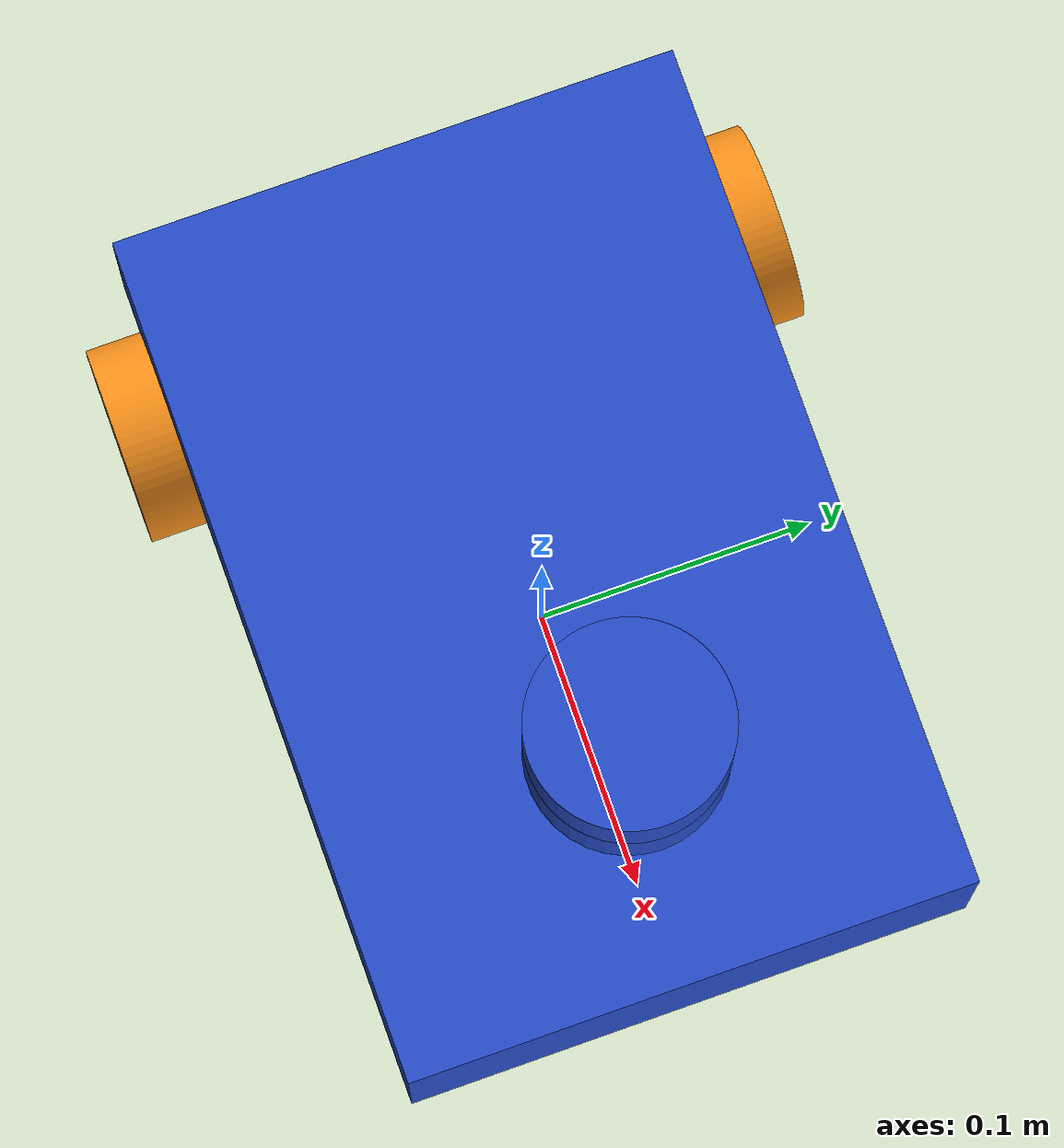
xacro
<?xml version="1.0" ?>
<robot name="diff_robot" xmlns:xacro="http://www.ros.org/wiki/xacro">

<!-- materials file -->
<xacro:include filename="$(find robot_description)/urdf/materials.xacro" />
<!-- gazebo materials file -->
<xacro:include filename="$(find robot_description)/gazebo/robot_gazebo_material.gazebo" />
<!-- transfer -->
<!-- plugin -->
<xacro:include filename="$(find robot_description)/gazebo/robot_gazebo_plugin.gazebo" />
<xacro:include filename="$(find robot_description)/gazebo/robot.gazebo" />

<link name="base_link">
  <inertial>
    <origin xyz="0.0016414935415674532 0.00013181938023246637 0.0817851117660408" rpy="0 0 0"/>
    <mass value="4.641985935784635"/>
    <inertia ixx="0.017373" iyy="0.036748" izz="0.049678" ixy="-4.2e-05" iyz="-3e-05" ixz="-0.000462"/>
  </inertial>
  <visual>
    <origin xyz="0 0 0" rpy="0 0 0"/>
    <geometry>
      <mesh filename="package://robot_description/meshes/base_link.stl" scale="0.001 0.001 0.001"/>
    </geometry>
    <material name="blue"/>
  </visual>
  <collision>
    <origin xyz="0 0 0" rpy="0 0 0"/>
    <geometry>
      <mesh filename="package://robot_description/meshes/base_link.stl" scale="0.001 0.001 0.001"/>
    </geometry>
  </collision>
</link>

<link name="lidar_1">
  <inertial>
    <origin xyz="0.0 -4.336808689942018e-18 0.015000000000000013" rpy="0 0 0"/>
    <mass value="0.6950302507169375"/>
    <inertia ixx="0.000265" iyy="0.000265" izz="0.000426" ixy="-0.0" iyz="-0.0" ixz="-0.0"/>
  </inertial>
  <visual>
    <origin xyz="-0.07 -0.005 -0.146" rpy="0 0 0"/>
    <geometry>
      <mesh filename="package://robot_description/meshes/lidar_1.stl" scale="0.001 0.001 0.001"/>
    </geometry>
    <material name="blue"/>
  </visual>
  <collision>
    <origin xyz="-0.07 -0.005 -0.146" rpy="0 0 0"/>
    <geometry>
      <mesh filename="package://robot_description/meshes/lidar_1.stl" scale="0.001 0.001 0.001"/>
    </geometry>
  </collision>
</link>

<link name="caster_wheel_1">
  <inertial>
    <origin xyz="1.3877787807814457e-17 1.5790972091241895e-18 -0.02301136363636362" rpy="0 0 0"/>
    <mass value="0.02384828798232877"/>
    <inertia ixx="5e-06" iyy="5e-06" izz="2e-06" ixy="-0.0" iyz="0.0" ixz="-0.0"/>
  </inertial>
  <visual>
    <origin xyz="-0.11 -0.0 -0.05" rpy="0 0 0"/>
    <geometry>
      <mesh filename="package://robot_description/meshes/caster_wheel_1.stl" scale="0.001 0.001 0.001"/>
    </geometry>
    <material name="silver"/>
  </visual>
  <collision>
    <origin xyz="-0.11 -0.0 -0.05" rpy="0 0 0"/>
    <geometry>
      <mesh filename="package://robot_description/meshes/caster_wheel_1.stl" scale="0.001 0.001 0.001"/>
    </geometry>
  </collision>
</link>

<link name="left_wheel_1">
  <inertial>
    <origin xyz="8.923417560424696e-15 0.014858133669609086 2.0816681711721685e-17" rpy="0 0 0"/>
    <mass value="0.07240291144049812"/>
    <inertia ixx="2.4e-05" iyy="4.4e-05" izz="2.4e-05" ixy="0.0" iyz="0.0" ixz="0.0"/>
  </inertial>
  <visual>
    <origin xyz="0.1 -0.095 -0.035" rpy="0 0 0"/>
    <geometry>
      <mesh filename="package://robot_description/meshes/left_wheel_1.stl" scale="0.001 0.001 0.001"/>
    </geometry>
    <material name="orange"/>
  </visual>
  <collision>
    <origin xyz="0.1 -0.095 -0.035" rpy="0 0 0"/>
    <geometry>
      <mesh filename="package://robot_description/meshes/left_wheel_1.stl" scale="0.001 0.001 0.001"/>
    </geometry>
  </collision>
</link>

<link name="right_wheel_1">
  <inertial>
    <origin xyz="3.562428130265971e-14 -0.014858133669609086 -6.938893903907228e-18" rpy="0 0 0"/>
    <mass value="0.07240291144049789"/>
    <inertia ixx="2.4e-05" iyy="4.4e-05" izz="2.4e-05" ixy="0.0" iyz="-0.0" ixz="0.0"/>
  </inertial>
  <visual>
    <origin xyz="0.1 0.095 -0.035" rpy="0 0 0"/>
    <geometry>
      <mesh filename="package://robot_description/meshes/right_wheel_1.stl" scale="0.001 0.001 0.001"/>
    </geometry>
    <material name="orange"/>
  </visual>
  <collision>
    <origin xyz="0.1 0.095 -0.035" rpy="0 0 0"/>
    <geometry>
      <mesh filename="package://robot_description/meshes/right_wheel_1.stl" scale="0.001 0.001 0.001"/>
    </geometry>
  </collision>
</link>

<!-- joint -->
<joint name="to_lidar" type="fixed">
  <origin xyz="0.07 0.005 0.146" rpy="0 0 0"/>
  <parent link="base_link"/>
  <child link="lidar_1"/>
</joint>

<joint name="to_caster_wheel" type="fixed">
  <origin xyz="0.11 0.0 0.05" rpy="0 0 0"/>
  <parent link="base_link"/>
  <child link="caster_wheel_1"/>
</joint>

<joint name="to_left_wheel" type="continuous">
  <origin xyz="-0.1 0.095 0.035" rpy="0 0 0"/>
  <parent link="base_link"/>
  <child link="left_wheel_1"/>
  <axis xyz="0.0 1.0 0.0"/>
</joint>

<joint name="to_right_wheel" type="continuous">
  <origin xyz="-0.1 -0.095 0.035" rpy="0 0 0"/>
  <parent link="base_link"/>
  <child link="right_wheel_1"/>
  <axis xyz="0.0 1.0 0.0"/>
</joint>

</robot>

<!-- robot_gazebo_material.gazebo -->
<robot name="diff_robot" xmlns:xacro="http://www.ros.org/wiki/xacro" >

<xacro:property name="body_color" value="Gazebo/Blue" />
<xacro:property name="lidar_color" value="Gazebo/White" />
<xacro:property name="wheel_color" value="Gazebo/Orange" />
<xacro:property name="caster_wheel" value="Gazebo/Red" />

<gazebo reference="base_link">
  <material>${body_color}</material>
</gazebo>

<gazebo reference="left_wheel_1">
  <material>${wheel_color}</material>
</gazebo>

<gazebo reference="right_wheel_1">
  <material>${wheel_color}</material>
</gazebo>

<gazebo reference="lidar_1">
  <material>${lidar_color}</material>
</gazebo>

<gazebo reference="caster_wheel_1">
  <material>${caster_wheel}</material>
</gazebo>
</robot>
